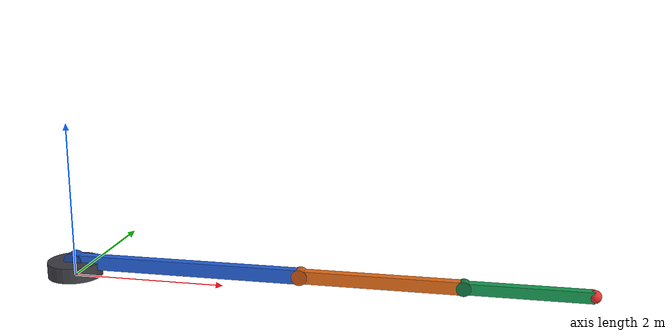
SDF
<?xml version="1.0"?>
<sdf version="1.8">
  <!-- Planar arm standing in the X-Z vertical plane (Z-up), matching planar_arm.py FK. -->
  <model name="planar_arm">
    <self_collide>false</self_collide>

    <!-- Sturdy cylindrical base fixed to the ground -->
    <link name="base">
      <inertial>
        <mass>20</mass>
        <inertia><ixx>0.2</ixx><iyy>0.2</iyy><izz>0.2</izz></inertia>
      </inertial>
      <visual name="base_visual">
        <pose>0 0 0.1 0 0 0</pose>
        <geometry><cylinder><radius>0.35</radius><length>0.2</length></cylinder></geometry>
        <material><diffuse>0.25 0.25 0.28 1</diffuse></material>
      </visual>
      <collision name="base_collision">
        <pose>0 0 0.1 0 0 0</pose>
        <geometry><cylinder><radius>0.35</radius><length>0.2</length></cylinder></geometry>
      </collision>
    </link>
    <joint name="base_fixed" type="fixed">
      <parent>world</parent>
      <child>base</child>
    </joint>

    <!-- Link 1 (length = 3.0 m, mass = 2 kg) -->
    <link name="link1">
      <pose>0 0 0.2 0 0 0</pose>
      <inertial>
        <pose>1.5 0 0 0 0 0</pose>
        <mass>2</mass>
        <inertia><ixx>0.01</ixx><iyy>1.5</iyy><izz>1.5</izz></inertia>
      </inertial>
      <visual name="visual">
        <pose>1.5 0 0 0 0 0</pose>
        <geometry><box><size>3.0 0.12 0.18</size></box></geometry>
        <material><diffuse>0.15 0.4 0.9 1</diffuse></material>
      </visual>
      <visual name="pivot_visual">
        <pose>0 0 0 1.57079632679 0 0</pose>
        <geometry><cylinder><radius>0.12</radius><length>0.16</length></cylinder></geometry>
        <material><diffuse>0.12 0.3 0.7 1</diffuse></material>
      </visual>
      <collision name="collision">
        <pose>1.5 0 0 0 0 0</pose>
        <geometry><box><size>3.0 0.12 0.18</size></box></geometry>
      </collision>
    </link>

    <!-- Link 2 (length = 2.0 m, mass = 1.5 kg) -->
    <link name="link2">
      <pose>3 0 0.2 0 0 0</pose>
      <inertial>
        <pose>1 0 0 0 0 0</pose>
        <mass>1.5</mass>
        <inertia><ixx>0.01</ixx><iyy>0.5</iyy><izz>0.5</izz></inertia>
      </inertial>
      <visual name="visual">
        <pose>1 0 0 0 0 0</pose>
        <geometry><box><size>2.0 0.12 0.16</size></box></geometry>
        <material><diffuse>0.95 0.45 0.1 1</diffuse></material>
      </visual>
      <visual name="pivot_visual">
        <pose>0 0 0 1.57079632679 0 0</pose>
        <geometry><cylinder><radius>0.10</radius><length>0.15</length></cylinder></geometry>
        <material><diffuse>0.8 0.35 0.08 1</diffuse></material>
      </visual>
      <collision name="collision">
        <pose>1 0 0 0 0 0</pose>
        <geometry><box><size>2.0 0.12 0.16</size></box></geometry>
      </collision>
    </link>

    <!-- Link 3 (length = 1.5 m, mass = 1 kg) -->
    <link name="link3">
      <pose>5 0 0.2 0 0 0</pose>
      <inertial>
        <pose>0.75 0 0 0 0 0</pose>
        <mass>1</mass>
        <inertia><ixx>0.01</ixx><iyy>0.2</iyy><izz>0.2</izz></inertia>
      </inertial>
      <visual name="visual">
        <pose>0.75 0 0 0 0 0</pose>
        <geometry><box><size>1.5 0.12 0.14</size></box></geometry>
        <material><diffuse>0.1 0.65 0.35 1</diffuse></material>
      </visual>
      <visual name="pivot_visual">
        <pose>0 0 0 1.57079632679 0 0</pose>
        <geometry><cylinder><radius>0.09</radius><length>0.14</length></cylinder></geometry>
        <material><diffuse>0.08 0.5 0.28 1</diffuse></material>
      </visual>
      <visual name="tool_visual">
        <pose>1.5 0 0 0 0 0</pose>
        <geometry><sphere><radius>0.08</radius></sphere></geometry>
        <material><diffuse>0.9 0.2 0.2 1</diffuse></material>
      </visual>
      <collision name="collision">
        <pose>0.75 0 0 0 0 0</pose>
        <geometry><box><size>1.5 0.12 0.14</size></box></geometry>
      </collision>
    </link>

    <!-- Revolute joints rotating in the vertical X-Z plane around -Y -->
    <!-- Small startup clearance avoids Gazebo velocity control locking at the lower stop;
         the planner still enforces joint1 >= 0. -->
    <joint name="joint1" type="revolute">
      <parent>base</parent>
      <child>link1</child>
      <axis>
        <xyz>0 -1 0</xyz>
        <limit><lower>-0.01</lower><upper>3.14159265359</upper><effort>2000</effort><velocity>3</velocity></limit>
        <dynamics><damping>2.0</damping><friction>0.1</friction></dynamics>
      </axis>
    </joint>
    <joint name="joint2" type="revolute">
      <parent>link1</parent>
      <child>link2</child>
      <axis>
        <xyz>0 -1 0</xyz>
        <limit><lower>-2.09439510239</lower><upper>2.09439510239</upper><effort>1000</effort><velocity>3</velocity></limit>
        <dynamics><damping>1.5</damping><friction>0.1</friction></dynamics>
      </axis>
    </joint>
    <joint name="joint3" type="revolute">
      <parent>link2</parent>
      <child>link3</child>
      <axis>
        <xyz>0 -1 0</xyz>
        <limit><lower>-2.09439510239</lower><upper>2.09439510239</upper><effort>500</effort><velocity>3</velocity></limit>
        <dynamics><damping>1.0</damping><friction>0.05</friction></dynamics>
      </axis>
    </joint>

    <plugin filename="gz-sim-joint-controller-system"
            name="gz::sim::systems::JointController">
      <joint_name>joint1</joint_name>
      <topic>/planar_arm/joint1/cmd_vel</topic>
      <initial_velocity>0</initial_velocity>
    </plugin>
    <plugin filename="gz-sim-joint-controller-system"
            name="gz::sim::systems::JointController">
      <joint_name>joint2</joint_name>
      <topic>/planar_arm/joint2/cmd_vel</topic>
      <initial_velocity>0</initial_velocity>
    </plugin>
    <plugin filename="gz-sim-joint-controller-system"
            name="gz::sim::systems::JointController">
      <joint_name>joint3</joint_name>
      <topic>/planar_arm/joint3/cmd_vel</topic>
      <initial_velocity>0</initial_velocity>
    </plugin>
    <plugin filename="gz-sim-joint-state-publisher-system"
            name="gz::sim::systems::JointStatePublisher">
      <topic>/planar_arm/joint_state</topic>
    </plugin>
  </model>
</sdf>
